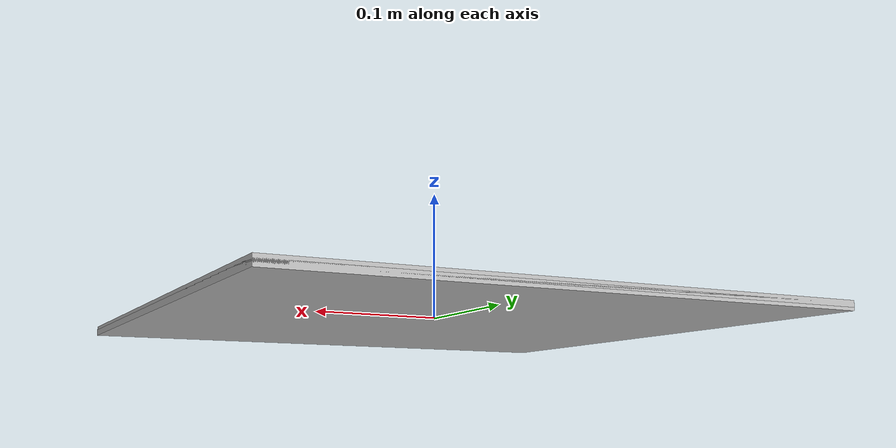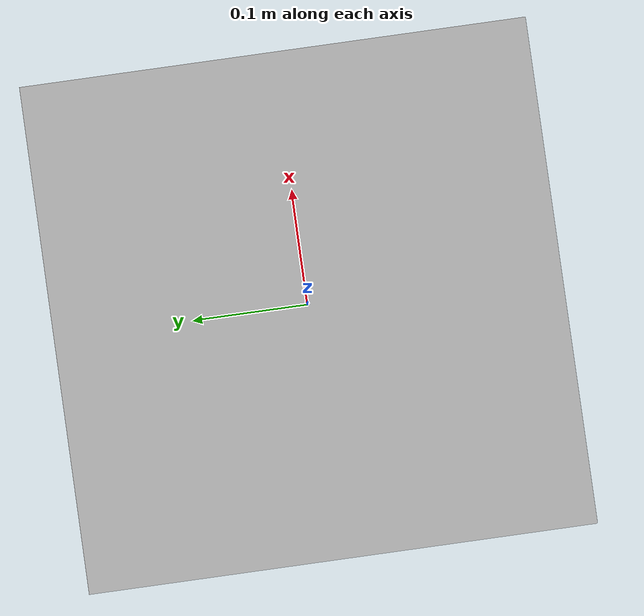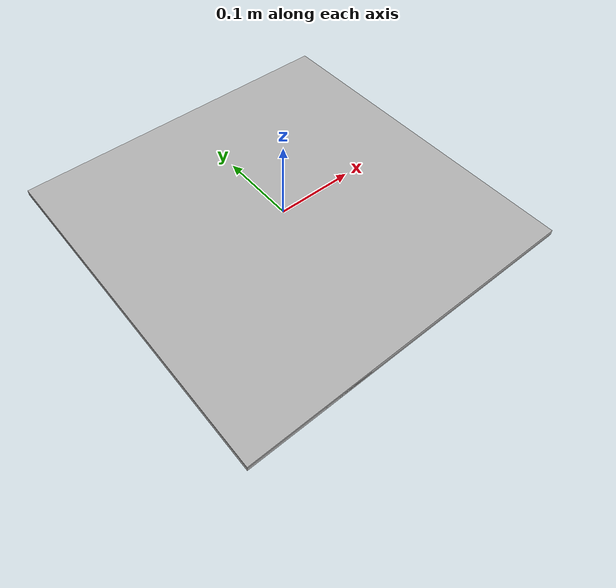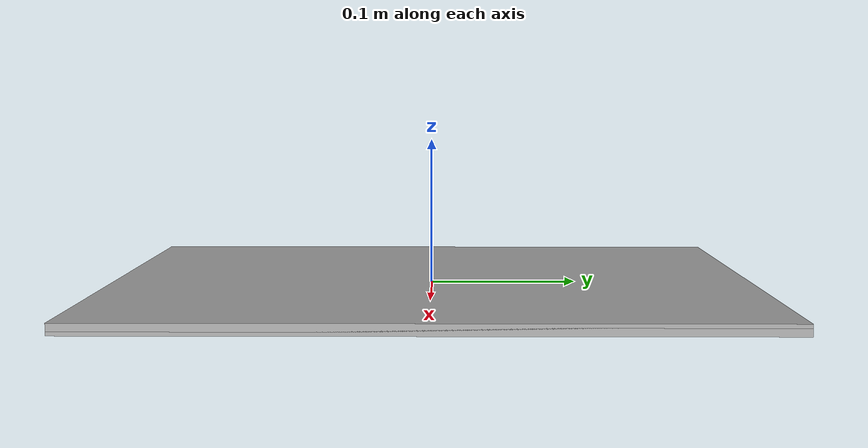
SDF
<?xml version="1.0" ?>
<sdf version="1.5">
  <model name="charuco">
    <static>true</static>
    <link name="charuco_link">
      <visual name="front_visual">
        <geometry>
          <box>
            <size>0.44 0.44 0.005</size>
          </box>
        </geometry>
        <material>
          <script>
            <uri>file://charuco/materials/scripts/</uri>
            <uri>file://charuco/materials/textures/</uri>
            <name>charuco</name>
          </script>
        </material>
      </visual>
      <visual name='rear_visual'>
        <pose frame=''>0 0 -0.0025 0 -0 0</pose>
        <geometry>
          <box>
            <size>0.44 0.44 0.005</size>
          </box>
        </geometry>
      </visual>
      <self_collide>0</self_collide>
      <enable_wind>0</enable_wind>
      <kinematic>0</kinematic>
    </link>
  </model>
</sdf>
